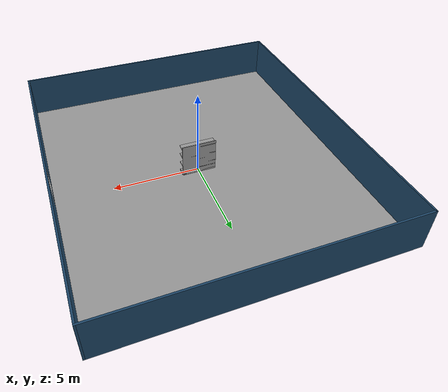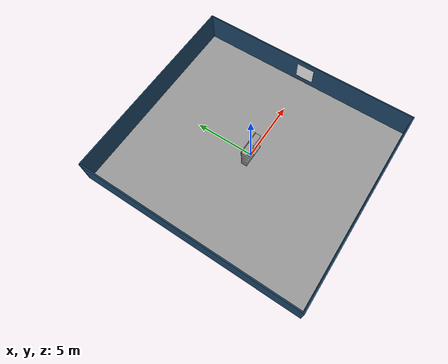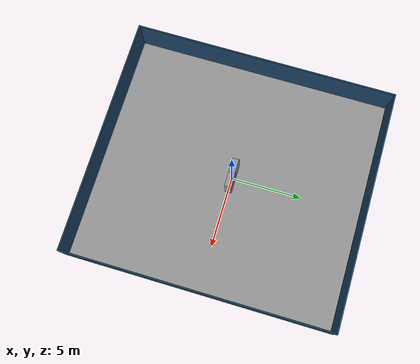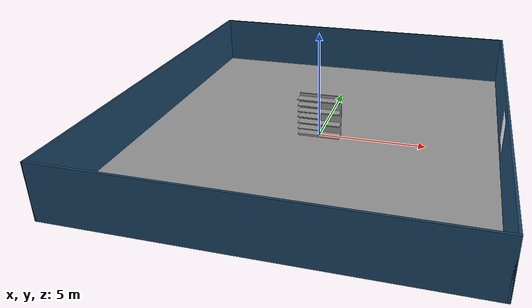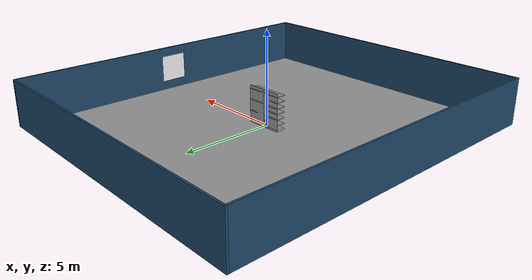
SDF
<sdf version="1.6">
 <world name="testbench">
  <include><uri>model://sun</uri></include>
  <include><uri>model://floor</uri></include>
  <include><uri>model://walls</uri></include>
  <include><uri>model://logo</uri><pose>8.25 0 1.25 0 0 0</pose></include>
  <include><uri>model://shelving_4</uri><pose>0.5 0 0 0 0 0</pose></include>
  <include><uri>model://shelving_8</uri><pose>-0.5 0 0 0 0 0</pose></include>
 </world>
</sdf>

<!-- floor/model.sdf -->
<sdf version="1.5">
  <model name="floor">
    <static>true</static>
    <link name="link">
      <collision name="collision">
        <geometry>
          <plane>
            <normal>0 0 1</normal>
            <size>16.6 18.6</size>
          </plane>
        </geometry>
        <surface>
          <contact>
             <collide_bitmask>0xffff</collide_bitmask>
          </contact>
          <friction>
            <ode>
              <mu>100</mu>
              <mu2>50</mu2>
            </ode>
          </friction>
        </surface>
      </collision>
      <visual name="visual">
        <cast_shadows>false</cast_shadows>
        <geometry>
          <plane>
            <normal>0 0 1</normal>
            <size>16.6 18.6</size>
          </plane>
        </geometry>
        <material>
          <script>
            <uri>file://media/materials/scripts/gazebo.material</uri>
            <name>Gazebo/Grey</name>
          </script>
          <ambient>0.99 0.99 0.99 1</ambient>
        </material>
      </visual>
    </link>
  </model>
</sdf>

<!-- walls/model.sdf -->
<sdf version='1.6'>
  <model name='walls'>
    <pose frame=''>0 0 0 0 -0 0</pose>
    <link name='right'>
      <collision name='right_collision'>
        <geometry>
          <box>
            <size>16.7 0.1 2.5</size>
          </box>
        </geometry>
        <pose frame=''>0 0 1.25 0 -0 0</pose>
      </collision>
      <visual name='right_visual'>
        <pose frame=''>0 0 1.25 0 -0 0</pose>
        <geometry>
          <box>
            <size>16.7 0.1 2.5</size>
          </box>
        </geometry>
        <material>
          <script>
            <uri>file://media/materials/scripts/gazebo.material</uri>
            <name>Gazebo/Grey</name>
          </script>
          <ambient>0.11 0.27 0.4 1</ambient>
        </material>
        <meta>
          <layer>0</layer>
        </meta>
      </visual>
      <pose frame=''>0 -9.3 0 0 -0 0</pose>
    </link>
    <link name='back'>
      <collision name='back_collision'>
        <geometry>
          <box>
            <size>18.7 0.1 2.5</size>
          </box>
        </geometry>
        <pose frame=''>0 0 1.25 0 -0 0</pose>
      </collision>
      <visual name='back_visual'>
        <pose frame=''>0 0 1.25 0 -0 0</pose>
        <geometry>
          <box>
            <size>18.7 0.1 2.5</size>
          </box>
        </geometry>
        <material>
          <script>
            <uri>file://media/materials/scripts/gazebo.material</uri>
            <name>Gazebo/Grey</name>
          </script>
          <ambient>0.11 0.27 0.4 1</ambient>
        </material>
        <meta>
          <layer>0</layer>
        </meta>
      </visual>
      <pose frame=''>8.3 0 0 0 -0 1.5708</pose>
    </link>
    <link name='left'>
      <collision name='left_collision'>
        <geometry>
          <box>
            <size>16.7 0.1 2.5</size>
          </box>
        </geometry>
        <pose frame=''>0 0 1.25 0 -0 0</pose>
      </collision>
      <visual name='left_visual'>
        <pose frame=''>0 0 1.25 0 -0 0</pose>
        <geometry>
          <box>
            <size>16.7 0.1 2.5</size>
          </box>
        </geometry>
        <material>
          <script>
            <uri>file://media/materials/scripts/gazebo.material</uri>
            <name>Gazebo/Grey</name>
          </script>
          <ambient>0.11 0.27 0.4 1</ambient>
        </material>
        <meta>
          <layer>0</layer>
        </meta>
      </visual>
      <pose frame=''>0 9.3 0 0 -0 3.14159</pose>
    </link>
    <link name='front'>
      <collision name='front_collision'>
        <geometry>
          <box>
            <size>18.7 0.1 2.5</size>
          </box>
        </geometry>
        <pose frame=''>0 0 1.25 0 -0 0</pose>
      </collision>
      <visual name='front_visual'>
        <pose frame=''>0 0 1.25 0 -0 0</pose>
        <geometry>
          <box>
            <size>18.7 0.1 2.5</size>
          </box>
        </geometry>
        <material>
          <script>
            <uri>file://media/materials/scripts/gazebo.material</uri>
            <name>Gazebo/Grey</name>
          </script>
          <ambient>0.11 0.27 0.4 1</ambient>
        </material>
        <meta>
          <layer>0</layer>
        </meta>
      </visual>
      <pose frame=''>-8.3 0 0 0 -0 -1.5708</pose>
    </link>
    <static>1</static>
  </model>
</sdf>

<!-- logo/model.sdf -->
<sdf version="1.6">
    <model name="logo">
      <static>true</static>
      <link name="link">
        <collision name="collision">
          <geometry>
            <box>
              <size>0.01 1.5 1.5</size>
            </box>
          </geometry>
        </collision>
        <visual name="visual">
          <geometry>
            <box>
              <size>0.01 1.5 1.5</size>
            </box>
          </geometry>
          <material>
            <script>
              <uri>model://logo/materials/scripts/logo.material</uri>
              <name>Logo/White</name>
            </script>
            <ambient>1 1 1 1</ambient>
          </material>
        </visual>
      </link>
    </model>
</sdf>

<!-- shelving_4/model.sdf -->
<sdf version="1.4">
  <model name="shelving_4">
    <static>true</static>

    <link name="base">
      <pose>0 0 0.05 0 0 0</pose>
      <collision name="collision">
        <geometry>
          <box>
            <size>1 0.5 0.10</size>
          </box>
        </geometry>
      </collision>
      <visual name="visual">
        <geometry>
          <box>
            <size>1 0.5 0.10</size>
          </box>
        </geometry>
        <material>
          <script>
            <uri>file://media/materials/scripts/gazebo.material</uri>
            <name>Gazebo/Grey</name>
          </script>
          <ambient>0.8 0.8 0.8 1</ambient>
        </material>
      </visual>
    </link>

    <link name="back">
      <pose>0 0.225 1 0 0 0</pose>
      <collision name="collision">
        <geometry>
          <box>
            <size>1 0.05 2</size>
          </box>
        </geometry>
      </collision>
      <visual name="visual">
        <geometry>
          <box>
            <size>1 0.05 2</size>
          </box>
        </geometry>
        <material>
          <script>
            <uri>file://media/materials/scripts/gazebo.material</uri>
            <name>Gazebo/Grey</name>
          </script>
          <ambient>0.8 0.8 0.8 1</ambient>
        </material>
      </visual>
    </link>

    <link name="shelf_1">
      <pose>0 0 0.65 0 0 0</pose>
      <collision name="collision">
        <geometry>
          <box>
            <size>1 0.5 0.05</size>
          </box>
        </geometry>
      </collision>
      <visual name="visual">
        <geometry>
          <box>
            <size>1 0.5 0.05</size>
          </box>
        </geometry>
        <material>
          <script>
            <uri>file://media/materials/scripts/gazebo.material</uri>
            <name>Gazebo/Grey</name>
          </script>
          <ambient>0.8 0.8 0.8 1</ambient>
        </material>
      </visual>
    </link>

    <link name="shelf_2">
      <pose>0 0 1.25 0 0 0</pose>
      <collision name="collision">
        <geometry>
          <box>
            <size>1 0.5 0.05</size>
          </box>
        </geometry>
      </collision>
      <visual name="visual">
        <geometry>
          <box>
            <size>1 0.5 0.05</size>
          </box>
        </geometry>
        <material>
          <script>
            <uri>file://media/materials/scripts/gazebo.material</uri>
            <name>Gazebo/Grey</name>
          </script>
          <ambient>0.8 0.8 0.8 1</ambient>
        </material>
      </visual>
    </link>

    <link name="shelf_3">
      <pose>0 0 1.825 0 0 0</pose>
      <collision name="collision">
        <geometry>
          <box>
            <size>1 0.5 0.05</size>
          </box>
        </geometry>
      </collision>
      <visual name="visual">
        <geometry>
          <box>
            <size>1 0.5 0.05</size>
          </box>
        </geometry>
        <material>
          <script>
            <uri>file://media/materials/scripts/gazebo.material</uri>
            <name>Gazebo/Grey</name>
          </script>
          <ambient>0.8 0.8 0.8 1</ambient>
        </material>
      </visual>
    </link>
  </model>
</sdf>

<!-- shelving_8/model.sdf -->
<sdf version="1.6">
  <model name="shelving_8">
    <static>true</static>

    <link name="base">
      <pose>0 0 0.05 0 0 0</pose>
      <collision name="collision">
        <geometry>
          <box>
            <size>1 0.5 0.10</size>
          </box>
        </geometry>
      </collision>
      <visual name="visual">
        <geometry>
          <box>
            <size>1 0.5 0.10</size>
          </box>
        </geometry>
        <material>
          <script>
            <uri>file://media/materials/scripts/gazebo.material</uri>
            <name>Gazebo/Grey</name>
          </script>
          <ambient>0.8 0.8 0.8 1</ambient>
        </material>
      </visual>
    </link>

    <link name="back">
      <pose>0 0.225 1 0 0 0</pose>
      <collision name="collision">
        <geometry>
          <box>
            <size>1 0.05 2</size>
          </box>
        </geometry>
      </collision>
      <visual name="visual">
        <geometry>
          <box>
            <size>1 0.05 2</size>
          </box>
        </geometry>
        <material>
          <script>
            <uri>file://media/materials/scripts/gazebo.material</uri>
            <name>Gazebo/Grey</name>
          </script>
          <ambient>0.8 0.8 0.8 1</ambient>
        </material>
      </visual>
    </link>

    <link name="shelf_1">
      <pose>0 0 0.35 0 0 0</pose>
      <collision name="collision">
        <geometry>
          <box>
            <size>1 0.5 0.05</size>
          </box>
        </geometry>
      </collision>
      <visual name="visual">
        <geometry>
          <box>
            <size>1 0.5 0.05</size>
          </box>
        </geometry>
        <material>
          <script>
            <uri>file://media/materials/scripts/gazebo.material</uri>
            <name>Gazebo/Grey</name>
          </script>
          <ambient>0.8 0.8 0.8 1</ambient>
        </material>
      </visual>
    </link>

    <link name="shelf_2">
      <pose>0 0 0.65 0 0 0</pose>
      <collision name="collision">
        <geometry>
          <box>
            <size>1 0.5 0.05</size>
          </box>
        </geometry>
      </collision>
      <visual name="visual">
        <geometry>
          <box>
            <size>1 0.5 0.05</size>
          </box>
        </geometry>
        <material>
          <script>
            <uri>file://media/materials/scripts/gazebo.material</uri>
            <name>Gazebo/Grey</name>
          </script>
          <ambient>0.8 0.8 0.8 1</ambient>
        </material>
      </visual>
    </link>

    <link name="shelf_3">
      <pose>0 0 0.95 0 0 0</pose>
      <collision name="collision">
        <geometry>
          <box>
            <size>1 0.5 0.05</size>
          </box>
        </geometry>
      </collision>
      <visual name="visual">
        <geometry>
          <box>
            <size>1 0.5 0.05</size>
          </box>
        </geometry>
        <material>
          <script>
            <uri>file://media/materials/scripts/gazebo.material</uri>
            <name>Gazebo/Grey</name>
          </script>
          <ambient>0.8 0.8 0.8 1</ambient>
        </material>
      </visual>
    </link>

    <link name="shelf_4">
      <pose>0 0 1.225 0 0 0</pose>
      <collision name="collision">
        <geometry>
          <box>
            <size>1 0.5 0.05</size>
          </box>
        </geometry>
      </collision>
      <visual name="visual">
        <geometry>
          <box>
            <size>1 0.5 0.05</size>
          </box>
        </geometry>
        <material>
          <script>
            <uri>file://media/materials/scripts/gazebo.material</uri>
            <name>Gazebo/Grey</name>
          </script>
          <ambient>0.8 0.8 0.8 1</ambient>
        </material>
      </visual>
    </link>

    <link name="shelf_5">
      <pose>0 0 1.525 0 0 0</pose>
      <collision name="collision">
        <geometry>
          <box>
            <size>1 0.5 0.05</size>
          </box>
        </geometry>
      </collision>
      <visual name="visual">
        <geometry>
          <box>
            <size>1 0.5 0.05</size>
          </box>
        </geometry>
        <material>
          <script>
            <uri>file://media/materials/scripts/gazebo.material</uri>
            <name>Gazebo/Grey</name>
          </script>
          <ambient>0.8 0.8 0.8 1</ambient>
        </material>
      </visual>
    </link>

    <link name="shelf_6">
      <pose>0 0 1.825 0 0 0</pose>
      <collision name="collision">
        <geometry>
          <box>
            <size>1 0.5 0.05</size>
          </box>
        </geometry>
      </collision>
      <visual name="visual">
        <geometry>
          <box>
            <size>1 0.5 0.05</size>
          </box>
        </geometry>
        <material>
          <script>
            <uri>file://media/materials/scripts/gazebo.material</uri>
            <name>Gazebo/Grey</name>
          </script>
          <ambient>0.8 0.8 0.8 1</ambient>
        </material>
      </visual>
    </link>
  </model>
</sdf>
